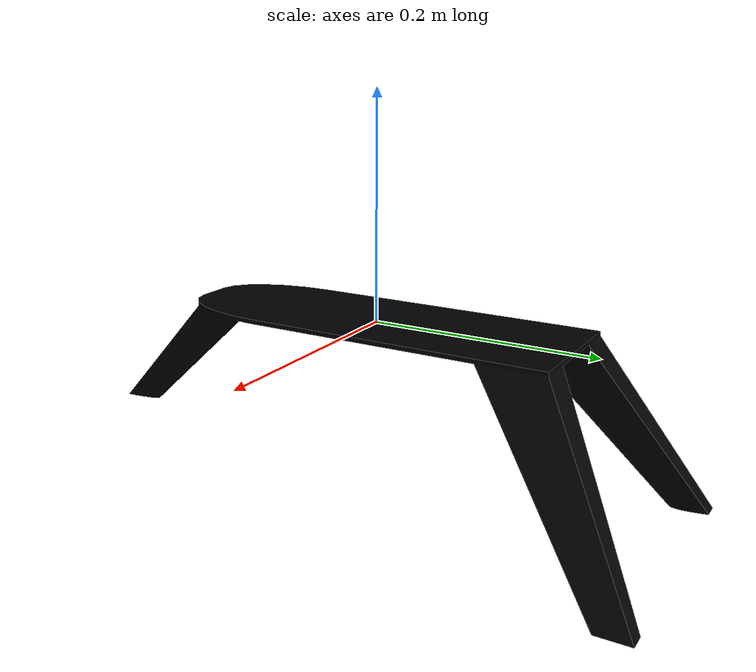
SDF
<?xml version='1.0'?>
<sdf version='1.7'>
  <model name='vtol_foot'>
    <link name='base_link'>
      <inertial>
        <pose>0 0 0 0 -0 0</pose>
        <mass>1</mass>
        <inertia>
          <ixx>0.0851081</ixx>
          <ixy>0</ixy>
          <ixz>0.018046</ixz>
          <iyy>0.246989</iyy>
          <iyz>0.0111391</iyz>
          <izz>0.303763</izz>
        </inertia>
      </inertial>
      <self_collide>1</self_collide>
      <enable_wind>0</enable_wind>
      <kinematic>0</kinematic>
      <pose>0 0 0 0 -0 0</pose>
      <gravity>1</gravity>
      <visual name='base_link_visual'>
        <pose>0 0 0 0 -0 0</pose>
        <geometry>
          <mesh>
            <scale>0.3 0.6 0.8</scale>
            <uri>model://vtol_foot/meshes/base_link.STL</uri>
          </mesh>
        </geometry>
        <material>
          <shader type='pixel'>
            <normal_map>__default__</normal_map>
          </shader>
          <script>
            <name>ModelPreview_1::base_link::base_link_visual_MATERIAL_</name>
          </script>
          <ambient>0 0 0 1</ambient>
          <diffuse>0 0 0 1</diffuse>
          <specular>0 0 0 1</specular>
          <emissive>0 0 0 1</emissive>
        </material>
        <transparency>0</transparency>
        <cast_shadows>1</cast_shadows>
      </visual>
      <collision name='base_link_collision'>
        <laser_retro>0</laser_retro>
        <max_contacts>10</max_contacts>
        <pose>0 0 0 0 -0 0</pose>
        <geometry>
          <mesh>
            <uri>model://vtol_foot/meshes/base_link.STL</uri>
            <scale>0.3 0.6 0.8</scale>
          </mesh>
        </geometry>
        <surface>
          <friction>
            <ode>
              <mu>1</mu>
              <mu2>1</mu2>
              <fdir1>0 0 0</fdir1>
              <slip1>0</slip1>
              <slip2>0</slip2>
            </ode>
            <torsional>
              <coefficient>1</coefficient>
              <patch_radius>0</patch_radius>
              <surface_radius>0</surface_radius>
              <use_patch_radius>1</use_patch_radius>
              <ode>
                <slip>0</slip>
              </ode>
            </torsional>
          </friction>
          <bounce>
            <restitution_coefficient>0</restitution_coefficient>
            <threshold>1e+06</threshold>
          </bounce>
          <contact>
            <collide_without_contact>0</collide_without_contact>
            <collide_without_contact_bitmask>1</collide_without_contact_bitmask>
            <collide_bitmask>1</collide_bitmask>
            <ode>
              <soft_cfm>0</soft_cfm>
              <soft_erp>0.2</soft_erp>
              <kp>1e+13</kp>
              <kd>1</kd>
              <max_vel>0.01</max_vel>
              <min_depth>0</min_depth>
            </ode>
            <bullet>
              <split_impulse>1</split_impulse>
              <split_impulse_penetration_threshold>-0.01</split_impulse_penetration_threshold>
              <soft_cfm>0</soft_cfm>
              <soft_erp>0.2</soft_erp>
              <kp>1e+13</kp>
              <kd>1</kd>
            </bullet>
          </contact>
        </surface>
      </collision>
    </link>
    <static>0</static>
    <allow_auto_disable>1</allow_auto_disable>
  </model>
</sdf>
